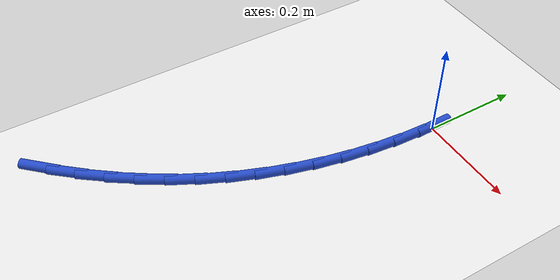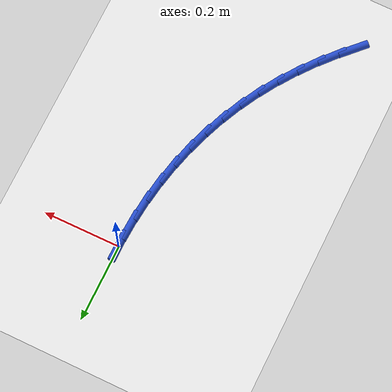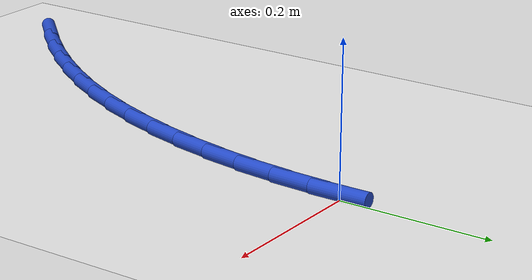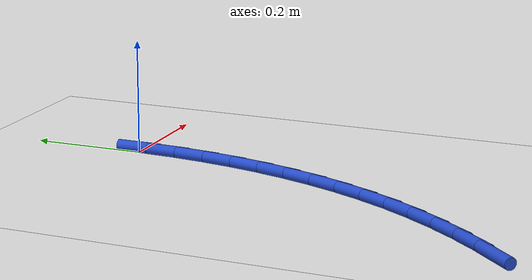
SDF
<sdf version="1.6">
 <world name="default">
  <model name="ground_plane">
   <static>1</static>
   <link name="link">
    <collision name="collision">
     <geometry><plane><normal>0 0 1</normal><size>100 100</size></plane></geometry>
     <surface><friction><ode><mu>100</mu><mu2>50</mu2></ode></friction></surface>
    </collision>
    <visual name="visual">
     <cast_shadows>0</cast_shadows>
     <geometry><plane><normal>0 0 1</normal><size>100 100</size></plane></geometry>
     <material>
      <script><uri>file://media/materials/scripts/gazebo.material</uri><name>Gazebo/WhiteGlow</name></script>
     </material>
    </visual>
   </link>
  </model>
  <model name="line">
   <link name="link_106">
    <pose>-0.2963599590675803 -0.7089217874438469 0.01 0 1.57 0.8091443090347136</pose>
    <collision name="collision">
     <geometry><cylinder><radius>0.01</radius><length>0.08</length></cylinder></geometry>
    </collision>
    <visual name="visual">
     <material>
      <script><name>Gazebo/Blue</name><uri>file://media/materials/scripts/gazebo.material</uri></script>
     </material>
     <geometry><cylinder><radius>0.01</radius><length>0.08</length></cylinder></geometry>
    </visual>
   </link>
   <link name="link_107">
    <pose>-0.2572140059809797 -0.6678711155979452 0.01 0 1.57 0.8630551286475451</pose>
    <collision name="collision">
     <geometry><cylinder><radius>0.01</radius><length>0.08</length></cylinder></geometry>
    </collision>
    <visual name="visual">
     <material>
      <script><name>Gazebo/Blue</name><uri>file://media/materials/scripts/gazebo.material</uri></script>
     </material>
     <geometry><cylinder><radius>0.01</radius><length>0.08</length></cylinder></geometry>
    </visual>
   </link>
   <link name="link_108">
    <pose>-0.22030015971202466 -0.6247277408543442 0.01 0 1.57 0.917815316720824</pose>
    <collision name="collision">
     <geometry><cylinder><radius>0.01</radius><length>0.08</length></cylinder></geometry>
    </collision>
    <visual name="visual">
     <material>
      <script><name>Gazebo/Blue</name><uri>file://media/materials/scripts/gazebo.material</uri></script>
     </material>
     <geometry><cylinder><radius>0.01</radius><length>0.08</length></cylinder></geometry>
    </visual>
   </link>
   <link name="link_109">
    <pose>-0.185847849111498 -0.5796872637646387 0.01 0 1.57 0.9739591428442129</pose>
    <collision name="collision">
     <geometry><cylinder><radius>0.01</radius><length>0.08</length></cylinder></geometry>
    </collision>
    <visual name="visual">
     <material>
      <script><name>Gazebo/Blue</name><uri>file://media/materials/scripts/gazebo.material</uri></script>
     </material>
     <geometry><cylinder><radius>0.01</radius><length>0.08</length></cylinder></geometry>
    </visual>
   </link>
   <link name="link_110">
    <pose>-0.15408650303018095 -0.5329452848804218 0.01 0 1.57 1.0320057156819542</pose>
    <collision name="collision">
     <geometry><cylinder><radius>0.01</radius><length>0.08</length></cylinder></geometry>
    </collision>
    <visual name="visual">
     <material>
      <script><name>Gazebo/Blue</name><uri>file://media/materials/scripts/gazebo.material</uri></script>
     </material>
     <geometry><cylinder><radius>0.01</radius><length>0.08</length></cylinder></geometry>
    </visual>
   </link>
   <link name="link_111">
    <pose>-0.12524421054294985 -0.4846968307069974 0.01 0 1.57 1.0913387069834732</pose>
    <collision name="collision">
     <geometry><cylinder><radius>0.01</radius><length>0.08</length></cylinder></geometry>
    </collision>
    <visual name="visual">
     <material>
      <script><name>Gazebo/Blue</name><uri>file://media/materials/scripts/gazebo.material</uri></script>
     </material>
     <geometry><cylinder><radius>0.01</radius><length>0.08</length></cylinder></geometry>
    </visual>
   </link>
   <link name="link_112">
    <pose>-0.09945627388511476 -0.43509717189141767 0.01 0 1.57 1.1501928012726619</pose>
    <collision name="collision">
     <geometry><cylinder><radius>0.01</radius><length>0.08</length></cylinder></geometry>
    </collision>
    <visual name="visual">
     <material>
      <script><name>Gazebo/Blue</name><uri>file://media/materials/scripts/gazebo.material</uri></script>
     </material>
     <geometry><cylinder><radius>0.01</radius><length>0.08</length></cylinder></geometry>
    </visual>
   </link>
   <link name="link_113">
    <pose>-0.0767065524659876 -0.38423669122000664 0.01 0 1.57 1.2081937500517026</pose>
    <collision name="collision">
     <geometry><cylinder><radius>0.01</radius><length>0.08</length></cylinder></geometry>
    </collision>
    <visual name="visual">
     <material>
      <script><name>Gazebo/Blue</name><uri>file://media/materials/scripts/gazebo.material</uri></script>
     </material>
     <geometry><cylinder><radius>0.01</radius><length>0.08</length></cylinder></geometry>
    </visual>
   </link>
   <link name="link_114">
    <pose>-0.05696494474728341 -0.3321997897099442 0.01 0 1.57 1.2651563787990427</pose>
    <collision name="collision">
     <geometry><cylinder><radius>0.01</radius><length>0.08</length></cylinder></geometry>
    </collision>
    <visual name="visual">
     <material>
      <script><name>Gazebo/Blue</name><uri>file://media/materials/scripts/gazebo.material</uri></script>
     </material>
     <geometry><cylinder><radius>0.01</radius><length>0.08</length></cylinder></geometry>
    </visual>
   </link>
   <link name="link_115">
    <pose>-0.04020134919071727 -0.27907086837840994 0.01 0 1.57 1.3209288739445104</pose>
    <collision name="collision">
     <geometry><cylinder><radius>0.01</radius><length>0.08</length></cylinder></geometry>
    </collision>
    <visual name="visual">
     <material>
      <script><name>Gazebo/Blue</name><uri>file://media/materials/scripts/gazebo.material</uri></script>
     </material>
     <geometry><cylinder><radius>0.01</radius><length>0.08</length></cylinder></geometry>
    </visual>
   </link>
   <link name="link_116">
    <pose>-0.02638566425800507 -0.22493432824258636 0.01 0 1.57 1.3753937249382129</pose>
    <collision name="collision">
     <geometry><cylinder><radius>0.01</radius><length>0.08</length></cylinder></geometry>
    </collision>
    <visual name="visual">
     <material>
      <script><name>Gazebo/Blue</name><uri>file://media/materials/scripts/gazebo.material</uri></script>
     </material>
     <geometry><cylinder><radius>0.01</radius><length>0.08</length></cylinder></geometry>
    </visual>
   </link>
   <link name="link_117">
    <pose>-0.015487788410861883 -0.16987457031965295 0.01 0 1.57 1.4284670074455004</pose>
    <collision name="collision">
     <geometry><cylinder><radius>0.01</radius><length>0.08</length></cylinder></geometry>
    </collision>
    <visual name="visual">
     <material>
      <script><name>Gazebo/Blue</name><uri>file://media/materials/scripts/gazebo.material</uri></script>
     </material>
     <geometry><cylinder><radius>0.01</radius><length>0.08</length></cylinder></geometry>
    </visual>
   </link>
   <link name="link_118">
    <pose>-0.007477620111003088 -0.11397599562679048 0.01 0 1.57 1.480096341978242</pose>
    <collision name="collision">
     <geometry><cylinder><radius>0.01</radius><length>0.08</length></cylinder></geometry>
    </collision>
    <visual name="visual">
     <material>
      <script><name>Gazebo/Blue</name><uri>file://media/materials/scripts/gazebo.material</uri></script>
     </material>
     <geometry><cylinder><radius>0.01</radius><length>0.08</length></cylinder></geometry>
    </visual>
   </link>
   <link name="link_119">
    <pose>-0.0023250578201440015 -0.05732300518117883 0.01 0 1.57 1.5302579070997475</pose>
    <collision name="collision">
     <geometry><cylinder><radius>0.01</radius><length>0.08</length></cylinder></geometry>
    </collision>
    <visual name="visual">
     <material>
      <script><name>Gazebo/Blue</name><uri>file://media/materials/scripts/gazebo.material</uri></script>
     </material>
     <geometry><cylinder><radius>0.01</radius><length>0.08</length></cylinder></geometry>
    </visual>
   </link>
   <link name="link_120">
    <pose>-1.231653667943533e-16 -2.7755575615628914e-17 0.01 0 1.57 -1.5626397752093004</pose>
    <collision name="collision">
     <geometry><cylinder><radius>0.01</radius><length>0.08</length></cylinder></geometry>
    </collision>
    <visual name="visual">
     <material>
      <script><name>Gazebo/Blue</name><uri>file://media/materials/scripts/gazebo.material</uri></script>
     </material>
     <geometry><cylinder><radius>0.01</radius><length>0.08</length></cylinder></geometry>
    </visual>
   </link>
  </model>
 </world>
</sdf>
